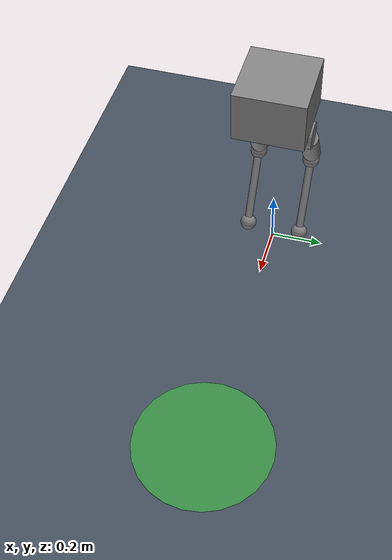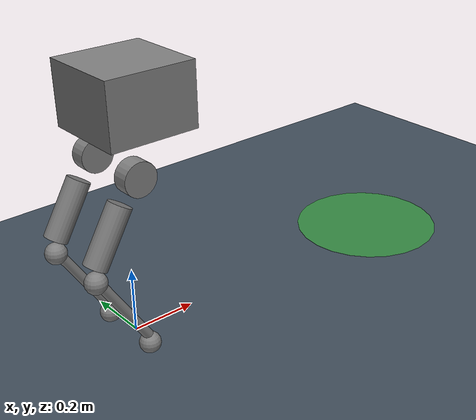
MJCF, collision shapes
<mujoco model="phase01_u01_unit_tron1">

  <!-- 1. 컴파일러 설정: 각도 라디안, 메쉬 상대경로 바인딩 -->
  <compiler angle="radian" coordinate="local" meshdir="../model_ori/PF_TRON1A/meshes/" autolimits="true"/>

  <size njmax="1000" nconmax="200"/>

  <!-- 2. 전역 물리 옵션 (U00 표준 준수) -->
  <option timestep="0.001" gravity="0 0 -9.81" integrator="implicitfast" cone="elliptic">
    <flag contact="enable"/>
  </option>

  <!-- 3. 뷰어 및 시각화 기본 설정 -->
  <visual>
    <global offwidth="640" offheight="480" azimuth="135" elevation="-20"/>
    <quality shadowsize="2048" offsamples="4"/>
    <rgba com="0.2 0.8 0.2 0.6" contactforce="0.8 0.2 0.2 0.8"/>
    <scale com="0.1" forcewidth="0.04" contactwidth="0.08"/>
  </visual>

  <!-- 4. 공통 에셋 (바닥 격자 텍스처 및 로봇 3D STL 메쉬) -->
  <asset>
    <!-- [U00 베이스 환경 상속] 하늘 배경 (Skybox) -->
    <texture type="skybox" builtin="gradient" rgb1="0.3 0.5 0.7" rgb2="0 0 0" width="512" height="512"/>

    <!-- [U00 베이스 환경 상속] 바닥 체크 패턴 (1m x 1m 격자 눈금선: 이동 거리 시각적 식별용) -->
    <texture name="texplane" type="2d" builtin="checker" rgb1="0.2 0.25 0.3" rgb2="0.3 0.35 0.4"
             width="512" height="512" mark="cross" markrgb="0.8 0.8 0.8"/>
    <material name="matplane" texture="texplane" texrepeat="5 5" texuniform="true" reflectance="0.1"/>

    <!-- Tron1 STL 3D 메쉬 에셋 -->
    <mesh name="base_Link" file="base_Link.STL"/>
    <mesh name="abad_L_Link" file="abad_L_Link.STL"/>
    <mesh name="hip_L_Link" file="hip_L_Link.STL"/>
    <mesh name="knee_L_Link" file="knee_L_Link.STL"/>
    <mesh name="foot_L_Link" file="foot_L_Link.STL"/>
    <mesh name="abad_R_Link" file="abad_R_Link.STL"/>
    <mesh name="hip_R_Link" file="hip_R_Link.STL"/>
    <mesh name="knee_R_Link" file="knee_R_Link.STL"/>
    <mesh name="foot_R_Link" file="foot_R_Link.STL"/>

    <!-- 재질 정의 -->
    <material name="robot_body_mat" rgba="0.82 0.85 0.90 1.0" specular="0.6" shininess="0.4"/>
    <material name="robot_dark_mat" rgba="0.2 0.2 0.22 1.0" specular="0.4" shininess="0.3"/>
    <material name="target_marker_mat" rgba="0.2 0.8 0.2 0.5"/>
  </asset>

  <!-- 5. 기본 클래스 정의 (시각 vs 충돌 분리) -->
  <default>
    <default class="visual">
      <geom contype="0" conaffinity="0" group="2" type="mesh"/>
    </default>
    <default class="collision">
      <geom contype="1" conaffinity="1" condim="3" group="3" friction="1.0 0.005 0.0001"/>
    </default>
    <!-- Tron1 다리 관절 기본 설정 (약간의 관성 및 댐핑 부여) -->
    <joint armature="0.02" damping="0.05" limited="true"/>
  </default>

  <!-- 6. 월드 바디: 조명, 바닥, 도킹 목표 마커, Tron1 로봇 바디 -->
  <worldbody>
    <!-- 광원 -->
    <light directional="true" pos="0 0 5" dir="0 0 -1" diffuse="0.8 0.8 0.8" castshadow="true"/>
    <light directional="false" pos="3 -3 3" dir="-1 1 -1" diffuse="0.4 0.4 0.4"/>

    <!-- 기준 바닥 평면 (U00 표준 준수: 기본 Group 0 시각 표시 및 충돌 설정) -->
    <geom name="floor" type="plane" size="0 0 0.05" material="matplane"
          contype="1" conaffinity="1" friction="1.0 0.005 0.0001" condim="3"/>

    <!-- 도킹 인계 구역 목표 마커 (x = 1.0m, y = 0.0m 지점에 반투명 원기둥 표시) -->
    <geom name="docking_target_marker" type="cylinder" pos="1.0 0 0.001" size="0.25 0.001"
          material="target_marker_mat" contype="0" conaffinity="0" group="1"/>

    <!-- 조망 관찰 카메라 -->
    <camera name="overview_cam" pos="2.2 -2.5 1.8" xyaxes="0.75 0.66 0.0 -0.25 0.28 0.92" fovy="45"/>
    <!-- 로봇 CoM 추적 카메라 -->
    <camera name="track_cam" mode="trackcom" pos="0 -2.4 1.2" xyaxes="1 0 0 0 0.5 0.86" fovy="50"/>

    <!--
      [Tron1 로봇 모델 본체]
      초기 스폰 위치: pos="0 0 0.80" (직립 다리 길이 0.78m 대비 약 2cm 부드러운 지면 안착 높이)
    -->
    <body name="base_Link" pos="0 0 0.80">
      <!-- 6-DOF 자유 관절 (공간 상을 자유롭게 이동 및 회전) -->
      <freejoint name="root_joint"/>

      <!-- 상체 관성 (Mass: 9.595kg) -->
      <inertial pos="0.0457 0.0001 -0.1638" quat="0.9725 -0.0061 -0.2324 0.0039"
                mass="9.595" diaginertia="0.1547 0.1109 0.0846"/>
      <site name="imu_site" pos="0 0 0"/>
      <geom class="visual" mesh="base_Link" material="robot_body_mat"/>
      <geom name="base_col" type="box" size="0.135 0.13 0.095" pos="0.03 0 -0.072" class="collision"/>

      <!-- ==================== LEFT LEG ==================== -->
      <body name="abad_L_Link" pos="0.05556 0.105 -0.2602">
        <inertial pos="-0.0697 0.0447 0.0005" quat="0.595 0.579 0.394 0.393" mass="1.469" diaginertia="0.0025 0.0020 0.0013"/>
        <joint name="abad_L_Joint" axis="1 0 0" range="-0.38 1.39"/>
        <geom class="visual" mesh="abad_L_Link" material="robot_body_mat"/>
        <geom name="abad_L_col" type="cylinder" pos="-0.08 0 0" euler="1.57 0 0" size="0.05 0.025" class="collision"/>

        <body name="hip_L_Link" pos="-0.077 0.0205 0">
          <inertial pos="-0.0286 -0.0477 -0.0399" quat="0.853 0.192 0.226 0.426" mass="2.3" diaginertia="0.0233 0.0230 0.0027"/>
          <joint name="hip_L_Joint" axis="0 1 0" range="-1.01 1.39"/>
          <geom class="visual" mesh="hip_L_Link" material="robot_dark_mat"/>
          <geom name="hip_L_col" type="cylinder" pos="-0.1 -0.02 -0.14" euler="0 0.53 0" size="0.035 0.09" class="collision"/>

          <body name="knee_L_Link" pos="-0.15 -0.0205 -0.25981">
            <inertial pos="0.0516 0.0015 -0.0814" quat="0.668 -0.202 -0.199 0.687" mass="0.55" diaginertia="0.0041 0.0041 0.0001"/>
            <joint name="knee_L_Joint" axis="0 -1 0" range="-0.87 1.36"/>
            <geom class="visual" mesh="knee_L_Link" material="robot_body_mat"/>
            <geom name="knee_L_col" type="cylinder" pos="0.078 0 -0.12" euler="0 -0.55 0" size="0.015 0.13" class="collision"/>
            <!-- 무릎 관절 힌지 바닥 충돌 방지용 구체 -->
            <geom name="knee_L_cap_col" type="sphere" pos="0 0 0" size="0.032" class="collision"/>

            <!-- 왼발끝 포인트 풋 (구체 접촉자: 반지름 0.032m) -->
            <geom class="visual" pos="0.150 0 -0.2598" mesh="foot_L_Link" material="robot_dark_mat"/>
            <geom name="foot_L_col" type="sphere" pos="0.150 0 -0.2598" size="0.032" class="collision"
                  friction="1.2 0.005 0.0001"/>
            <site name="foot_L_site" pos="0.150 0 -0.2598" size="0.01" rgba="1 0 0 1"/>
          </body>
        </body>
      </body>

      <!-- ==================== RIGHT LEG ==================== -->
      <body name="abad_R_Link" pos="0.05556 -0.105 -0.2602">
        <inertial pos="-0.0697 -0.0447 0.0005" quat="0.393 0.394 0.579 0.595" mass="1.469" diaginertia="0.0025 0.0020 0.0013"/>
        <joint name="abad_R_Joint" axis="1 0 0" range="-1.39 0.38"/>
        <geom class="visual" mesh="abad_R_Link" material="robot_body_mat"/>
        <geom name="abad_R_col" type="cylinder" pos="-0.08 0 0" euler="1.57 0 0" size="0.05 0.025" class="collision"/>

        <body name="hip_R_Link" pos="-0.077 -0.0205 0">
          <inertial pos="-0.0286 0.0477 -0.0399" quat="0.426 0.226 0.192 0.853" mass="2.3" diaginertia="0.0233 0.0230 0.0027"/>
          <joint name="hip_R_Joint" axis="0 -1 0" range="-1.39 1.01"/>
          <geom class="visual" mesh="hip_R_Link" material="robot_dark_mat"/>
          <geom name="hip_R_col" type="cylinder" pos="-0.10 0.025 -0.14" euler="0 0.53 0" size="0.035 0.09" class="collision"/>

          <body name="knee_R_Link" pos="-0.15 0.0205 -0.25981">
            <inertial pos="0.0516 -0.0015 -0.0814" quat="0.687 -0.199 -0.202 0.668" mass="0.55" diaginertia="0.0041 0.0041 0.0001"/>
            <joint name="knee_R_Joint" axis="0 1 0" range="-1.36 0.87"/>
            <geom class="visual" mesh="knee_R_Link" material="robot_body_mat"/>
            <geom name="knee_R_col" type="cylinder" pos="0.078 0 -0.12" euler="0 -0.55 0" size="0.015 0.13" class="collision"/>
            <!-- 무릎 관절 힌지 바닥 충돌 방지용 구체 -->
            <geom name="knee_R_cap_col" type="sphere" pos="0 0 0" size="0.032" class="collision"/>

            <!-- 오른발끝 포인트 풋 (구체 접촉자: 반지름 0.032m) -->
            <geom class="visual" pos="0.150 0 -0.2598" mesh="foot_R_Link" material="robot_dark_mat"/>
            <geom name="foot_R_col" type="sphere" pos="0.150 0 -0.2598" size="0.032" class="collision"
                  friction="1.2 0.005 0.0001"/>
            <site name="foot_R_site" pos="0.150 0 -0.2598" size="0.01" rgba="0 0 1 1"/>
          </body>
        </body>
      </body>
    </body>
  </worldbody>

  <!-- 7. 액추에이터 정의: 6개 모터 직접 토크 제어 (LimX 공식 규격: [-80, 80] Nm) -->
  <actuator>
    <motor name="abad_L_motor" joint="abad_L_Joint" gear="1" ctrllimited="true" ctrlrange="-80 80"/>
    <motor name="hip_L_motor"  joint="hip_L_Joint"  gear="1" ctrllimited="true" ctrlrange="-80 80"/>
    <motor name="knee_L_motor" joint="knee_L_Joint" gear="1" ctrllimited="true" ctrlrange="-80 80"/>
    <motor name="abad_R_motor" joint="abad_R_Joint" gear="1" ctrllimited="true" ctrlrange="-80 80"/>
    <motor name="hip_R_motor"  joint="hip_R_Joint"  gear="1" ctrllimited="true" ctrlrange="-80 80"/>
    <motor name="knee_R_motor" joint="knee_R_Joint" gear="1" ctrllimited="true" ctrlrange="-80 80"/>
  </actuator>

  <!-- 8. 센서 정의: IMU 및 6개 관절 엔코더 -->
  <sensor>
    <framequat name="imu_quat" objtype="site" objname="imu_site"/>
    <gyro name="imu_gyro" site="imu_site"/>
    <accelerometer name="imu_acc" site="imu_site"/>
    <jointpos name="pos_abad_L" joint="abad_L_Joint"/>
    <jointpos name="pos_hip_L"  joint="hip_L_Joint"/>
    <jointpos name="pos_knee_L" joint="knee_L_Joint"/>
    <jointpos name="pos_abad_R" joint="abad_R_Joint"/>
    <jointpos name="pos_hip_R"  joint="hip_R_Joint"/>
    <jointpos name="pos_knee_R" joint="knee_R_Joint"/>
    <jointvel name="vel_abad_L" joint="abad_L_Joint"/>
    <jointvel name="vel_hip_L"  joint="hip_L_Joint"/>
    <jointvel name="vel_knee_L" joint="knee_L_Joint"/>
    <jointvel name="vel_abad_R" joint="abad_R_Joint"/>
    <jointvel name="vel_hip_R"  joint="hip_R_Joint"/>
    <jointvel name="vel_knee_R" joint="knee_R_Joint"/>
  </sensor>

  <!-- 9. 기본 안정 기립 키프레임 (뷰어 리셋 시 기본 자세 자동 복원) -->
  <keyframe>
    <!-- 직립 기립 자세(Standing Pose): Base Z = 0.80m, Straight Stance (전 관절 0.0 rad) -->
    <key name="stand" qpos="0 0 0.80 1 0 0 0 0.0 0.0 0.0 0.0 0.0 0.0"/>
  </keyframe>
</mujoco>
